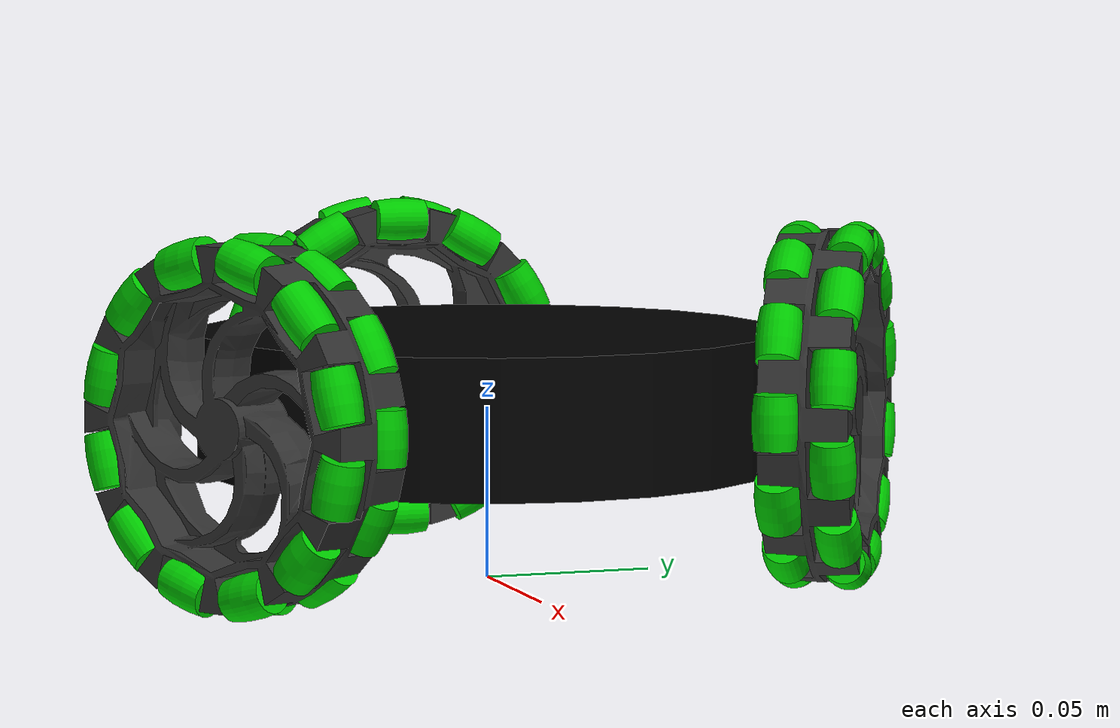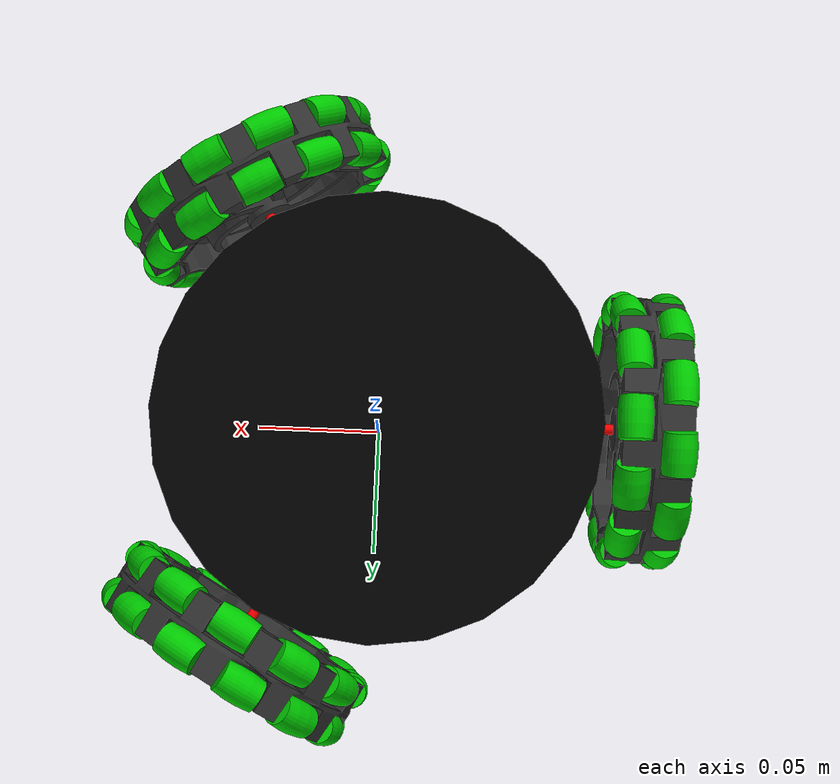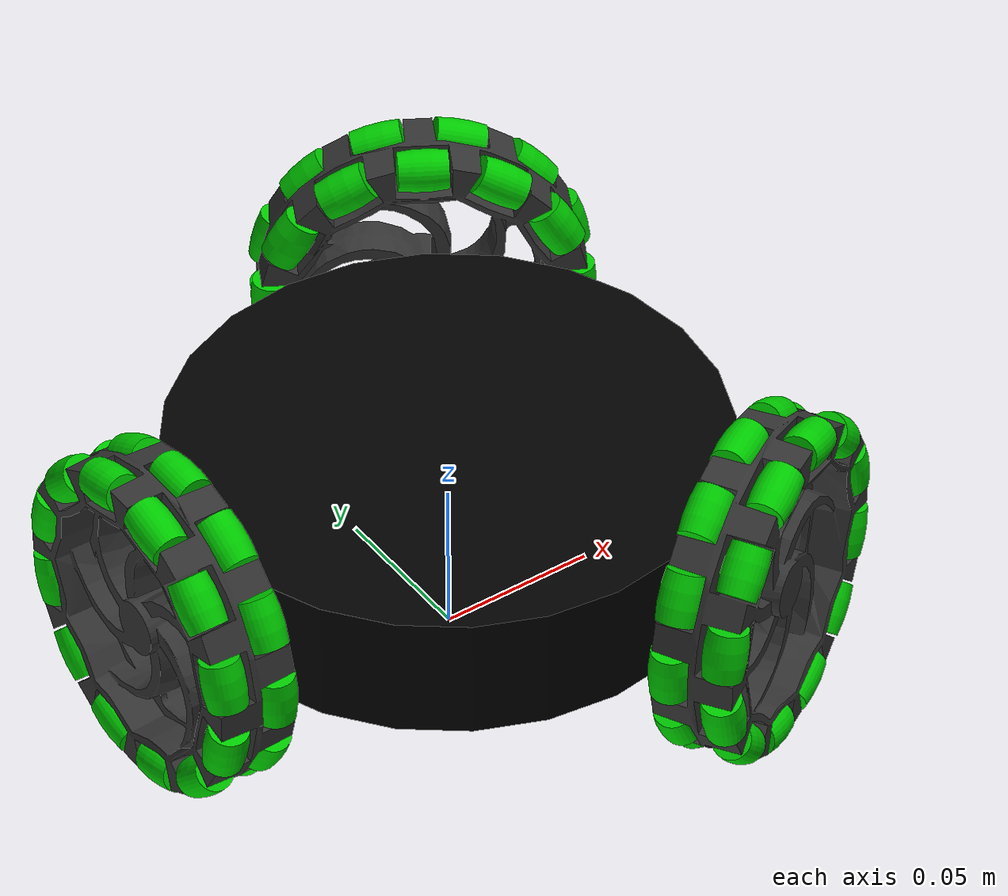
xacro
<?xml version="1.0"?>
<robot xmlns:xacro="http://www.ros.org/wiki/xacro" name="axebot">
    <xacro:arg name="only_one_wheel" default="false"/>

    <!-- Constants for wheel mechanical parameters -->
    <xacro:property name="PI" value="3.1415926535897931"/>
    <xacro:property name="chassis_mass" value="1.074"/>
    <xacro:property name="chassis_height" value="0.04"/>
    <xacro:property name="robot_height" value="0.053"/>
    <xacro:property name="wheel_mass" value="0.105" />
    <xacro:property name="wheel_radius" value="0.0508" />
    <xacro:property name="motor_shaft_radius" value="0.002" />
    <xacro:property name="shaft_mass" value="0.001" />

    <!-- The sum of the chassis radius, half the wheel thickness, and the
    motor shaft length must be equal to the robot radius L = 0.1 m used in the
    kinematic model -->
    <xacro:property name="chassis_radius" value="0.085"/>
    <xacro:property name="wheel_thickness" value="0.01905" />
    <xacro:property name="motor_shaft_length" value="0.005475"/>

    <xacro:include filename="$(find axebot_description)/urdf/wheel.urdf.xacro"/>
    <xacro:include filename="$(find axebot_description)/urdf/materials.urdf.xacro"/>
    <xacro:include filename="$(find axebot_description)/urdf/gazebo.urdf.xacro"/>
    <xacro:include filename="$(find axebot_description)/urdf/ros2_control.urdf.xacro"/>

    <link name="base_link"></link>

    <joint name="base_link_joint" type="fixed">
        <origin xyz="0 0 ${robot_height}" rpy="0 0 0" />
        <parent link="base_link"/>
        <child link="chassis_link" />
    </joint>

    <link name="chassis_link">
        <visual name="">
            <origin xyz="0.0 0.0 0.0" rpy="0.0 0.0 0.0"/>
            <geometry>
                <cylinder radius="${chassis_radius}" length="${chassis_height}"/>
            </geometry>
            <material name="black"/>
        </visual>

        <collision>
            <origin xyz="0.0 0.0 0.0" rpy="0.0 0.0 0.0"/>
            <geometry>
                <cylinder radius="${chassis_radius}" length="${chassis_height}"/>
            </geometry>
            <material name="black"/>
        </collision>

        <inertial>
            <origin xyz="0.0 0.0 0.0" rpy="0.0 0.0 0.0"/>
            <mass value="1.634"/>
            <inertia ixx="0.00316977667"
                        ixy="0.0"
                        ixz="0.0"
                        iyy="0.00316977667"
                        iyz="0.0"
                        izz="0.005903752"/>
        </inertial>
    </link>
    <xacro:if value="$(arg only_one_wheel)">
        <xacro:wheel parent="chassis_link" suffix="1" theta="0"/>
    </xacro:if>
    <xacro:unless value="$(arg only_one_wheel)">
        <xacro:wheel parent="chassis_link" suffix="1" theta="${PI}"/>
        <xacro:wheel parent="chassis_link" suffix="2" theta="-${PI/3}"/>
        <xacro:wheel parent="chassis_link" suffix="3" theta="${PI/3}"/>
    </xacro:unless>
</robot>

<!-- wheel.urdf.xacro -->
<robot xmlns:xacro="http://www.ros.org/wiki/xacro">
    <xacro:property name="distance_to_roller_center" value="0.04645"/>

    <xacro:macro name="inertial_cylinder" params="mass length radius *origin">
        <inertial>
            <xacro:insert_block name="origin"/>
            <mass value="${mass}" />
            <inertia
                ixx="${(1/12) * mass * (3*radius*radius + length*length)}"
                ixy="0.0"
                ixz="0.0"
                iyy="${(1/12) * mass * (3*radius*radius + length*length)}"
                iyz="0.0"
                izz="${(1/2) * mass * (radius*radius)}" />
            </inertial>
    </xacro:macro>

    <xacro:macro name="insert_roller" params="parent reflect theta suffix wheel">
        <joint name="rim_to_roller${wheel}${suffix}joint" type="continuous">
            <origin xyz="${distance_to_roller_center*cos(theta)} ${distance_to_roller_center*sin(theta)} ${reflect*0.008}" rpy="0.0 0.0 ${theta-PI/2}"/>
            <parent link="${parent}"/>
            <child link="roller${wheel}${suffix}_link"/>
            <axis xyz="1.0 0.0 0.0"/>
            <dynamics friction="0.01"/>
        </joint>

        <link name="roller${wheel}${suffix}_link">
            <visual>
                <origin xyz="0.0 0.0 0.0" rpy="0.0 0.0 0.0"/>
                <geometry>
                    <mesh filename="file://$(find axebot_description)/meshes/roller.stl"/>
                </geometry>
                <material name="green"/>
            </visual>

            <collision>
                <origin xyz="0.0 0.0 0.0" rpy="0.0 0.0 0.0"/>
                <geometry>
                    <mesh filename="file://$(find axebot_description)/meshes/roller.stl"/>
                </geometry>
            </collision>

            <inertial>
                <origin xyz="0.0 0.0 0.0" rpy="0.0 0.0 0.0"/>
                <mass value="0.003"/>
                <inertia ixx="5.3e-8"
                         ixy="0.0"
                         ixz="0.0"
                         iyy="8e-8"
                         iyz="0.0"
                         izz="8e-8"/>
            </inertial>
        </link>
        <gazebo reference="roller${wheel}${suffix}_link">
            <material>Gazebo/Green</material>
            <fdir1>0 1 0"</fdir1>
            <mu1>10</mu1>
            <mu2>10</mu2>
        </gazebo>
    </xacro:macro>

    <xacro:macro name="wheel" params="parent suffix theta">
        <joint name="wheel${suffix}_shaft_joint" type="fixed">
            <origin xyz="${chassis_radius*cos(theta)} ${chassis_radius*sin(theta)} 0.0" rpy="0.0 ${PI/2} ${theta+PI}"/>
            <parent link="${parent}"/>
            <child link="motor${suffix}_shaft_link"/>
        </joint>

        <link name="motor${suffix}_shaft_link">
            <visual>
                <origin xyz="0.0 0.0 -${motor_shaft_length/2}" rpy="0.0 0.0 0.0"/>
                <geometry>
                    <cylinder radius="${motor_shaft_radius}" length="${motor_shaft_length}"/>
                </geometry>
                <material name="red"/>
            </visual>

            <collision>
                <origin xyz="0.0 0.0 -${motor_shaft_length/2}" rpy="0.0 0.0 0.0"/>
                <geometry>
                    <cylinder radius="${motor_shaft_radius}" length="${motor_shaft_length}"/>
                </geometry>
            </collision>
            <xacro:inertial_cylinder mass="${shaft_mass}" radius="${motor_shaft_radius}" length="${motor_shaft_length}">
                <origin xyz="0.0 0.0 -${motor_shaft_length/2}" rpy="0.0 0.0 0.0"/>
            </xacro:inertial_cylinder>
        </link>

        <joint name="wheel${suffix}_joint" type="continuous">
            <origin xyz="0.0 0.0 -${motor_shaft_length+wheel_thickness/2}" rpy="0.0 0.0 0.0"/>
            <parent link="motor${suffix}_shaft_link"/>
            <child link="wheel${suffix}_link"/>
            <axis xyz="0.0 0.0 1.0"/>
        </joint>

        <link name="wheel${suffix}_link">
            <visual>
                <origin xyz="0.0 0.0 0.0" rpy="0.0 0.0 0.0"/>
                <geometry>
                    <mesh filename="file://$(find axebot_description)/meshes/rim.stl"/>
                </geometry>
                <material name="grey"/>
            </visual>

            <collision>
                <origin xyz="0.0 0.0 0.0" rpy="0.0 0.0 0.0"/>
                <geometry>
                    <mesh filename="file://$(find axebot_description)/meshes/wheel-collision.dae"/>
                </geometry>
            </collision>

            <inertial>
                <origin xyz="0.0 0.0 0.0" rpy="0.0 0.0 0.0"/>
                <mass value="0.113"/>
                <inertia ixx="0.000089064"
                         ixy="0.0"
                         ixz="0.0"
                         iyy="0.000089064"
                         iyz="0.0"
                         izz="0.000173339"/>
            </inertial>
        </link>

        <xacro:insert_roller parent="wheel${suffix}_link" reflect="1.0" theta="0" suffix="1" wheel="${suffix}"/>
        <xacro:insert_roller parent="wheel${suffix}_link" reflect="1.0" theta="${PI/6}" suffix="2" wheel="${suffix}"/>
        <xacro:insert_roller parent="wheel${suffix}_link" reflect="1.0" theta="${PI/3}" suffix="3" wheel="${suffix}"/>
        <xacro:insert_roller parent="wheel${suffix}_link" reflect="1.0" theta="${PI/2}" suffix="4" wheel="${suffix}"/>
        <xacro:insert_roller parent="wheel${suffix}_link" reflect="1.0" theta="${2*PI/3}" suffix="5" wheel="${suffix}"/>
        <xacro:insert_roller parent="wheel${suffix}_link" reflect="1.0" theta="${5*PI/6}" suffix="6" wheel="${suffix}"/>
        <xacro:insert_roller parent="wheel${suffix}_link" reflect="1.0" theta="${PI}" suffix="7" wheel="${suffix}"/>
        <xacro:insert_roller parent="wheel${suffix}_link" reflect="1.0" theta="${7*PI/6}" suffix="8" wheel="${suffix}"/>
        <xacro:insert_roller parent="wheel${suffix}_link" reflect="1.0" theta="${4*PI/3}" suffix="9" wheel="${suffix}"/>
        <xacro:insert_roller parent="wheel${suffix}_link" reflect="1.0" theta="${3*PI/2}" suffix="10" wheel="${suffix}"/>
        <xacro:insert_roller parent="wheel${suffix}_link" reflect="1.0" theta="${5*PI/3}" suffix="11" wheel="${suffix}"/>
        <xacro:insert_roller parent="wheel${suffix}_link" reflect="1.0" theta="${11*PI/6}" suffix="12" wheel="${suffix}"/>

        <xacro:insert_roller parent="wheel${suffix}_link" reflect="-1.0" theta="${45*PI/180}" suffix="-1" wheel="${suffix}"/>
        <xacro:insert_roller parent="wheel${suffix}_link" reflect="-1.0" theta="${75*PI/180}" suffix="-2" wheel="${suffix}"/>
        <xacro:insert_roller parent="wheel${suffix}_link" reflect="-1.0" theta="${105*PI/180}" suffix="-3" wheel="${suffix}"/>
        <xacro:insert_roller parent="wheel${suffix}_link" reflect="-1.0" theta="${135*PI/180}" suffix="-4" wheel="${suffix}"/>
        <xacro:insert_roller parent="wheel${suffix}_link" reflect="-1.0" theta="${165*PI/180}" suffix="-5" wheel="${suffix}"/>
        <xacro:insert_roller parent="wheel${suffix}_link" reflect="-1.0" theta="${195*PI/180}" suffix="-6" wheel="${suffix}"/>
        <xacro:insert_roller parent="wheel${suffix}_link" reflect="-1.0" theta="${225*PI/180}" suffix="-7" wheel="${suffix}"/>
        <xacro:insert_roller parent="wheel${suffix}_link" reflect="-1.0" theta="${255*PI/180}" suffix="-8" wheel="${suffix}"/>
        <xacro:insert_roller parent="wheel${suffix}_link" reflect="-1.0" theta="${285*PI/180}" suffix="-9" wheel="${suffix}"/>
        <xacro:insert_roller parent="wheel${suffix}_link" reflect="-1.0" theta="${315*PI/180}" suffix="-10" wheel="${suffix}"/>
        <xacro:insert_roller parent="wheel${suffix}_link" reflect="-1.0" theta="${345*PI/180}" suffix="-11" wheel="${suffix}"/>
        <xacro:insert_roller parent="wheel${suffix}_link" reflect="-1.0" theta="${375*PI/180}" suffix="-12" wheel="${suffix}"/>
    </xacro:macro>
</robot>

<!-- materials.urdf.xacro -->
<robot xmlns:xacro="http://www.ros.org/wiki/xacro" name="axebot">
  <material name="green">
    <color rgba="0.0 0.8 0.0 1.0"/>
  </material>

  <material name="black">
    <color rgba="0.0 0.0 0.0 1.0"/>
  </material>

  <material name="grey">
    <color rgba="0.2 0.2 0.2 1.0"/>
  </material>

  <material name="red">
    <color rgba="1.0 0.0 0.0 1.0"/>
  </material>
</robot>
